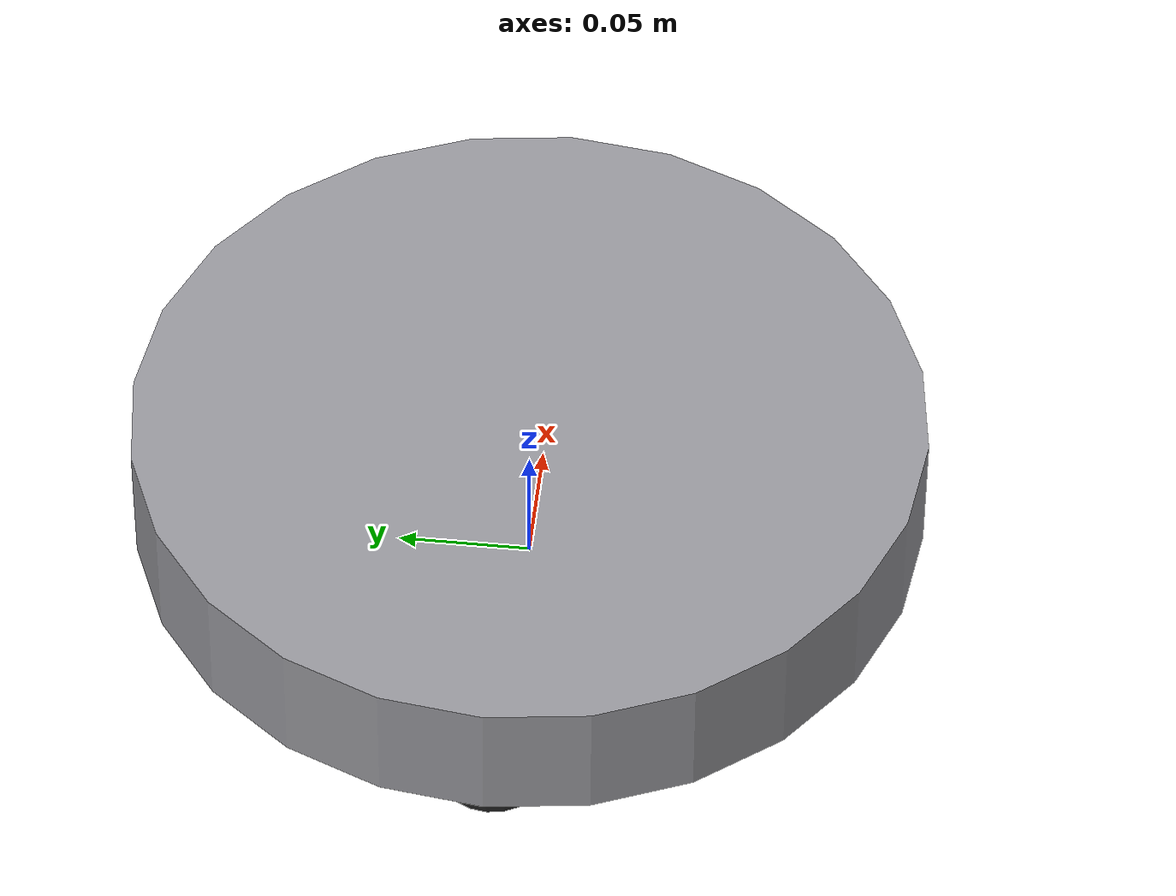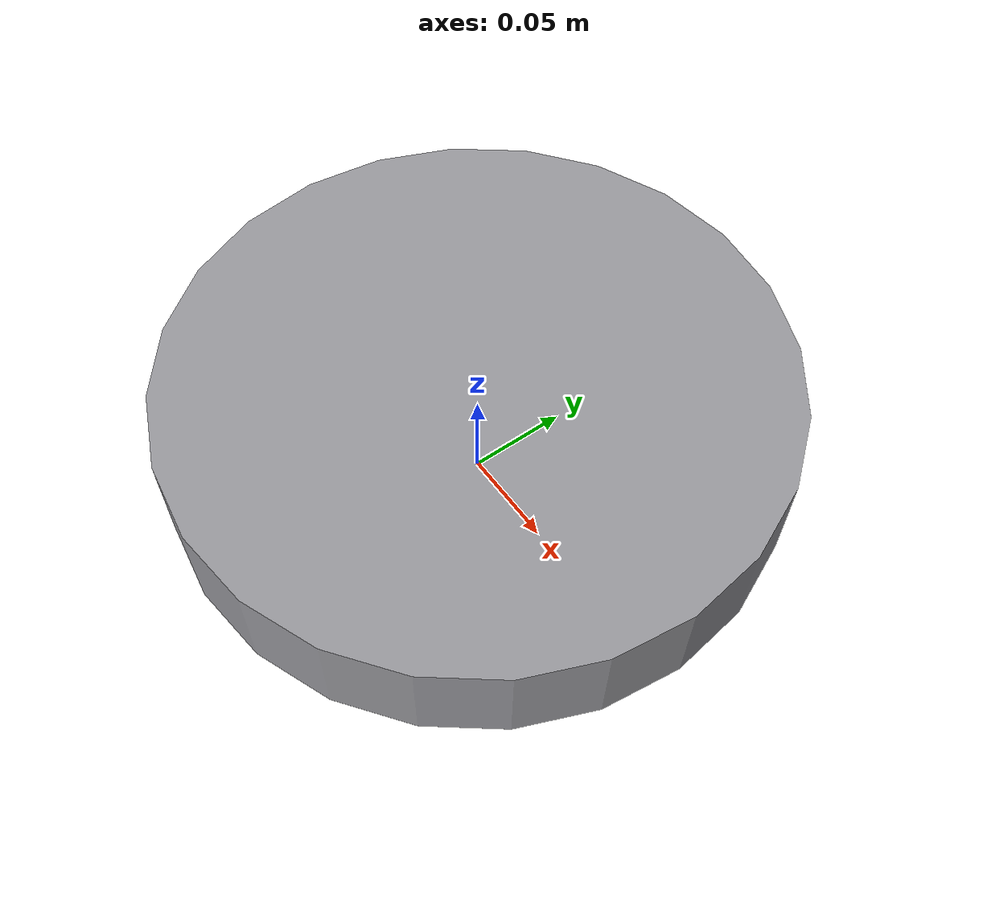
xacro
<?xml version="1.0"?>
<robot name="diffbot" xmlns:xacro="http://www.ros.org/wiki/xacro">

  <xacro:include filename="inertial.xacro"/>

  <!-- ===== parameters: change a number here and the whole robot follows ===== -->
  <xacro:property name="base_radius" value="0.15"/>
  <xacro:property name="base_length" value="0.05"/>
  <xacro:property name="base_mass" value="5.0"/>
  <xacro:property name="wheel_radius" value="0.05"/>
  <xacro:property name="wheel_width" value="0.025"/>
  <xacro:property name="wheel_mass" value="0.5"/>
  <xacro:property name="wheel_separation" value="0.32"/>
  <xacro:property name="caster_radius" value="0.025"/>
  <xacro:property name="caster_mass" value="0.1"/>
  <xacro:property name="caster_x" value="0.12"/>

  <material name="grey"><color rgba="0.6 0.6 0.62 1"/></material>
  <material name="black"><color rgba="0.1 0.1 0.1 1"/></material>
  <material name="blue"><color rgba="0.2 0.45 0.85 1"/></material>

  <!-- base_footprint: on the ground. base_link: at wheel-axle height. -->
  <link name="base_footprint"/>

  <joint name="base_joint" type="fixed">
    <parent link="base_footprint"/>
    <child link="base_link"/>
    <origin xyz="0 0 ${wheel_radius}" rpy="0 0 0"/>
  </joint>

  <link name="base_link">
    <visual>
      <origin xyz="0 0 0" rpy="0 0 0"/>
      <geometry><cylinder radius="${base_radius}" length="${base_length}"/></geometry>
      <material name="grey"/>
    </visual>
    <collision>
      <origin xyz="0 0 0" rpy="0 0 0"/>
      <geometry><cylinder radius="${base_radius}" length="${base_length}"/></geometry>
    </collision>
    <xacro:cylinder_inertial m="${base_mass}" r="${base_radius}" h="${base_length}">
      <origin xyz="0 0 0" rpy="0 0 0"/>
    </xacro:cylinder_inertial>
  </link>

  <!-- A passive caster: a sphere touching the ground, fixed to base_link. -->
  <xacro:macro name="caster" params="name x">
    <joint name="caster_${name}_joint" type="fixed">
      <parent link="base_link"/>
      <child link="caster_${name}_link"/>
      <origin xyz="${x} 0 ${caster_radius - wheel_radius}" rpy="0 0 0"/>
    </joint>
    <link name="caster_${name}_link">
      <visual>
        <geometry><sphere radius="${caster_radius}"/></geometry>
        <material name="black"/>
      </visual>
      <collision>
        <geometry><sphere radius="${caster_radius}"/></geometry>
      </collision>
      <xacro:sphere_inertial m="${caster_mass}" r="${caster_radius}">
        <origin xyz="0 0 0" rpy="0 0 0"/>
      </xacro:sphere_inertial>
    </link>
  </xacro:macro>

  <xacro:caster name="front" x="${caster_x}"/>
  <xacro:caster name="back" x="${-caster_x}"/>

  <!-- TODO 2: instantiate the left (y_sign=1) and right (y_sign=-1) wheels. -->

  <!-- TODO 3: laser_link — a blue cylinder, radius 0.03, length 0.03, mass 0.1 kg, fixed to base_link by
       laser_joint at x = 0.08 and resting on top of the base (z = base_length/2 + 0.015). -->

</robot>

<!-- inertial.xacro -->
<!-- Inertia of uniform solid bodies, centred on the body. Use the same origin as the visual. -->
<robot xmlns:xacro="http://www.ros.org/wiki/xacro">

  <xacro:macro name="box_inertial" params="m x y z *origin">
    <inertial>
      <xacro:insert_block name="origin"/>
      <mass value="${m}"/>
      <inertia ixx="${m * (y*y + z*z) / 12}" ixy="0" ixz="0"
               iyy="${m * (x*x + z*z) / 12}" iyz="0"
               izz="${m * (x*x + y*y) / 12}"/>
    </inertial>
  </xacro:macro>

  <!-- A cylinder whose axis is the z axis of the given origin. -->
  <xacro:macro name="cylinder_inertial" params="m r h *origin">
    <inertial>
      <xacro:insert_block name="origin"/>
      <mass value="${m}"/>
      <inertia ixx="${m * (3*r*r + h*h) / 12}" ixy="0" ixz="0"
               iyy="${m * (3*r*r + h*h) / 12}" iyz="0"
               izz="${m * r*r / 2}"/>
    </inertial>
  </xacro:macro>

  <xacro:macro name="sphere_inertial" params="m r *origin">
    <inertial>
      <xacro:insert_block name="origin"/>
      <mass value="${m}"/>
      <inertia ixx="${2 * m * r*r / 5}" ixy="0" ixz="0" iyy="${2 * m * r*r / 5}" iyz="0" izz="${2 * m * r*r / 5}"/>
    </inertial>
  </xacro:macro>

</robot>
